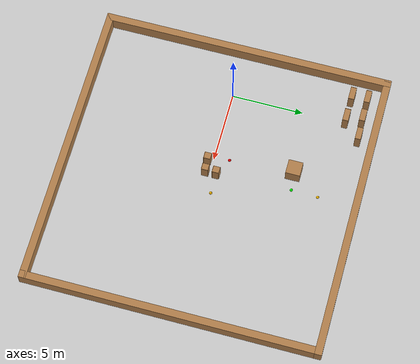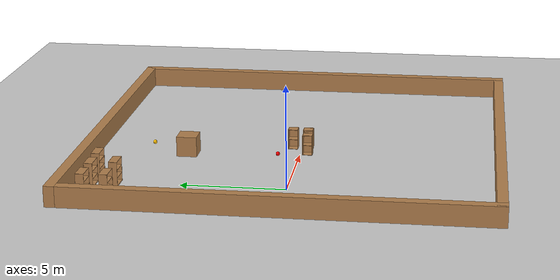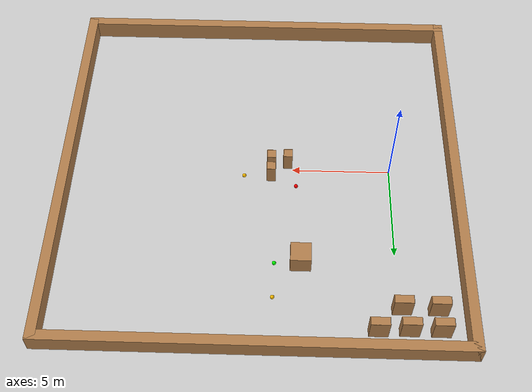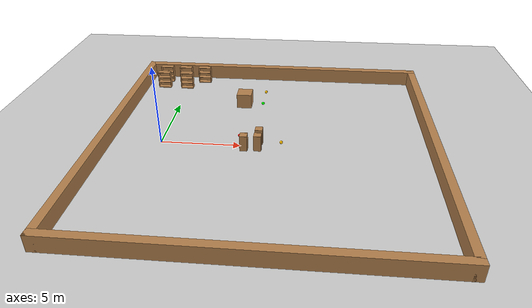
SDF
<sdf version="1.7">
 <world name="default">
  <model name="ground_plane">
   <pose>0 0 0 0 -0 0.716815</pose>
   <static>1</static>
   <link name="link">
    <collision name="collision">
     <geometry><plane><normal>0 0 1</normal><size>100 100</size></plane></geometry>
     <surface><friction><ode><mu>100</mu><mu2>50</mu2></ode></friction></surface>
    </collision>
    <visual name="visual">
     <cast_shadows>0</cast_shadows>
     <geometry><plane><normal>0 0 1</normal><size>100 100</size></plane></geometry>
     <material>
      <script><uri>file://media/materials/scripts/gazebo.material</uri><name>Gazebo/Grey</name></script>
     </material>
    </visual>
   </link>
  </model>
  <model name="boundary20x20">
   <pose>6.68965 0.18325 0 0 -0 0</pose>
   <link name="Wall_0">
    <collision name="Wall_0_Collision">
     <geometry><box><size>20.5 0.5 1</size></box></geometry>
     <pose>0 0 0.5 0 -0 0</pose>
    </collision>
    <visual name="Wall_0_Visual">
     <pose>0 0 0.5 0 -0 0</pose>
     <geometry><box><size>20.5 0.5 1</size></box></geometry>
     <material>
      <script><uri>file://media/materials/scripts/gazebo.material</uri><name>Gazebo/Wood</name></script>
      <ambient>1 1 1 1</ambient>
     </material>
     <meta><layer>0</layer></meta>
    </visual>
    <pose>0 -10 0 0 -0 0</pose>
   </link>
   <link name="Wall_2">
    <collision name="Wall_2_Collision">
     <geometry><box><size>20.5 0.5 1</size></box></geometry>
     <pose>0 0 0.5 0 -0 0</pose>
    </collision>
    <visual name="Wall_2_Visual">
     <pose>0 0 0.5 0 -0 0</pose>
     <geometry><box><size>20.5 0.5 1</size></box></geometry>
     <material>
      <script><uri>file://media/materials/scripts/gazebo.material</uri><name>Gazebo/Wood</name></script>
      <ambient>1 1 1 1</ambient>
     </material>
     <meta><layer>0</layer></meta>
    </visual>
    <pose>-10 0 0 0 -0 -1.5708</pose>
   </link>
   <link name="Wall_4">
    <collision name="Wall_4_Collision">
     <geometry><box><size>20.5 0.5 1</size></box></geometry>
     <pose>0 0 0.5 0 -0 0</pose>
    </collision>
    <visual name="Wall_4_Visual">
     <pose>0 0 0.5 0 -0 0</pose>
     <geometry><box><size>20.5 0.5 1</size></box></geometry>
     <material>
      <script><uri>file://media/materials/scripts/gazebo.material</uri><name>Gazebo/Wood</name></script>
      <ambient>1 1 1 1</ambient>
     </material>
     <meta><layer>0</layer></meta>
    </visual>
    <pose>0 10 0 0 -0 0</pose>
   </link>
   <link name="Wall_8">
    <collision name="Wall_8_Collision">
     <geometry><box><size>20.5 0.5 1</size></box></geometry>
     <pose>0 0 0.5 0 -0 0</pose>
    </collision>
    <visual name="Wall_8_Visual">
     <pose>0 0 0.5 0 -0 0</pose>
     <geometry><box><size>20.5 0.5 1</size></box></geometry>
     <material>
      <script><uri>file://media/materials/scripts/gazebo.material</uri><name>Gazebo/Wood</name></script>
      <ambient>1 1 1 1</ambient>
     </material>
     <meta><layer>0</layer></meta>
    </visual>
    <pose>10 0 0 0 -0 1.5708</pose>
   </link>
   <static>1</static>
  </model>
  <model name="sphere_yo">
   <link name="link_1">
    <pose>0 0 0.1 0 -0 0</pose>
    <inertial>
     <mass>1</mass>
     <inertia><ixx>0.1</ixx><ixy>0</ixy><ixz>0</ixz><iyy>0.1</iyy><iyz>0</iyz><izz>0.1</izz></inertia>
    </inertial>
    <visual name="visual">
     <geometry><sphere><radius>0.1</radius></sphere></geometry>
     <material>
      <lighting>1</lighting>
      <script><uri>file://media/materials/scripts/gazebo.material</uri><name>Gazebo/Grey</name></script>
      <ambient>1 0.749 0 1</ambient>
      <diffuse>1 0.749 0 1</diffuse>
      <specular>0 0 0 1</specular>
      <emissive>0 0 0 1</emissive>
      <shader type="vertex"><normal_map>__default__</normal_map></shader>
     </material>
    </visual>
    <collision name="collision">
     <geometry><sphere><radius>0.1</radius></sphere></geometry>
     <surface>
      <friction>
       <ode><mu>1</mu><mu2>1</mu2><fdir1>0 0 0</fdir1><slip1>0</slip1><slip2>0</slip2></ode>
       <torsional>
        <coefficient>1</coefficient>
        <patch_radius>0</patch_radius>
        <surface_radius>0</surface_radius>
        <use_patch_radius>1</use_patch_radius>
        <ode><slip>0</slip></ode>
       </torsional>
      </friction>
      <bounce><restitution_coefficient>0</restitution_coefficient><threshold>1e+06</threshold></bounce>
      <contact>
       <collide_without_contact>0</collide_without_contact>
       <collide_without_contact_bitmask>1</collide_without_contact_bitmask>
       <collide_bitmask>1</collide_bitmask>
       <ode>
        <soft_cfm>0</soft_cfm>
        <soft_erp>0.2</soft_erp>
        <kp>1e+13</kp>
        <kd>1</kd>
        <max_vel>0.01</max_vel>
        <min_depth>0</min_depth>
       </ode>
       <bullet>
        <split_impulse>1</split_impulse>
        <split_impulse_penetration_threshold>-0.01</split_impulse_penetration_threshold>
        <soft_cfm>0</soft_cfm>
        <soft_erp>0.2</soft_erp>
        <kp>1e+13</kp>
        <kd>1</kd>
       </bullet>
      </contact>
     </surface>
    </collision>
   </link>
   <static>1</static>
   <pose>7.49354 0.467227 0 0 -0 0</pose>
  </model>
  <model name="sphere_g">
   <link name="link_1">
    <pose>0 0 0.1 0 -0 0</pose>
    <inertial>
     <mass>1</mass>
     <inertia><ixx>0.1</ixx><ixy>0</ixy><ixz>0</ixz><iyy>0.1</iyy><iyz>0</iyz><izz>0.1</izz></inertia>
    </inertial>
    <visual name="visual">
     <geometry><sphere><radius>0.1</radius></sphere></geometry>
     <material>
      <lighting>1</lighting>
      <script><uri>file://media/materials/scripts/gazebo.material</uri><name>Gazebo/Grey</name></script>
      <ambient>0 1 0 1</ambient>
      <diffuse>0 1 0 1</diffuse>
      <specular>0 0 0 1</specular>
      <emissive>0 0 0 1</emissive>
      <shader type="vertex"><normal_map>__default__</normal_map></shader>
     </material>
    </visual>
    <collision name="collision">
     <geometry><sphere><radius>0.1</radius></sphere></geometry>
     <surface>
      <friction>
       <ode><mu>1</mu><mu2>1</mu2><fdir1>0 0 0</fdir1><slip1>0</slip1><slip2>0</slip2></ode>
       <torsional>
        <coefficient>1</coefficient>
        <patch_radius>0</patch_radius>
        <surface_radius>0</surface_radius>
        <use_patch_radius>1</use_patch_radius>
        <ode><slip>0</slip></ode>
       </torsional>
      </friction>
      <bounce><restitution_coefficient>0</restitution_coefficient><threshold>1e+06</threshold></bounce>
      <contact>
       <collide_without_contact>0</collide_without_contact>
       <collide_without_contact_bitmask>1</collide_without_contact_bitmask>
       <collide_bitmask>1</collide_bitmask>
       <ode>
        <soft_cfm>0</soft_cfm>
        <soft_erp>0.2</soft_erp>
        <kp>1e+13</kp>
        <kd>1</kd>
        <max_vel>0.01</max_vel>
        <min_depth>0</min_depth>
       </ode>
       <bullet>
        <split_impulse>1</split_impulse>
        <split_impulse_penetration_threshold>-0.01</split_impulse_penetration_threshold>
        <soft_cfm>0</soft_cfm>
        <soft_erp>0.2</soft_erp>
        <kp>1e+13</kp>
        <kd>1</kd>
       </bullet>
      </contact>
     </surface>
    </collision>
   </link>
   <static>1</static>
   <pose>5.85173 5.66826 0 0 -0 0</pose>
  </model>
  <model name="sphere_r">
   <link name="link_1">
    <pose>0 0 0.1 0 -0 0</pose>
    <inertial>
     <mass>1</mass>
     <inertia><ixx>0.1</ixx><ixy>0</ixy><ixz>0</ixz><iyy>0.1</iyy><iyz>0</iyz><izz>0.1</izz></inertia>
    </inertial>
    <visual name="visual">
     <geometry><sphere><radius>0.1</radius></sphere></geometry>
     <material>
      <lighting>1</lighting>
      <script><uri>file://media/materials/scripts/gazebo.material</uri><name>Gazebo/Grey</name></script>
      <ambient>1 0 0 1</ambient>
      <diffuse>1 0 0 1</diffuse>
      <specular>0 0 0 1</specular>
      <emissive>0 0 0 1</emissive>
      <shader type="vertex"><normal_map>__default__</normal_map></shader>
     </material>
    </visual>
    <collision name="collision">
     <geometry><sphere><radius>0.1</radius></sphere></geometry>
     <surface>
      <friction>
       <ode><mu>1</mu><mu2>1</mu2><fdir1>0 0 0</fdir1><slip1>0</slip1><slip2>0</slip2></ode>
       <torsional>
        <coefficient>1</coefficient>
        <patch_radius>0</patch_radius>
        <surface_radius>0</surface_radius>
        <use_patch_radius>1</use_patch_radius>
        <ode><slip>0</slip></ode>
       </torsional>
      </friction>
      <bounce><restitution_coefficient>0</restitution_coefficient><threshold>1e+06</threshold></bounce>
      <contact>
       <collide_without_contact>0</collide_without_contact>
       <collide_without_contact_bitmask>1</collide_without_contact_bitmask>
       <collide_bitmask>1</collide_bitmask>
       <ode>
        <soft_cfm>0</soft_cfm>
        <soft_erp>0.2</soft_erp>
        <kp>1e+13</kp>
        <kd>1</kd>
        <max_vel>0.01</max_vel>
        <min_depth>0</min_depth>
       </ode>
       <bullet>
        <split_impulse>1</split_impulse>
        <split_impulse_penetration_threshold>-0.01</split_impulse_penetration_threshold>
        <soft_cfm>0</soft_cfm>
        <soft_erp>0.2</soft_erp>
        <kp>1e+13</kp>
        <kd>1</kd>
       </bullet>
      </contact>
     </surface>
    </collision>
   </link>
   <static>1</static>
   <pose>4.81508 1.07756 0 0 -0 0</pose>
  </model>
  <model name="sphere_yo_0">
   <link name="link_1">
    <pose>0 0 0.1 0 -0 0</pose>
    <inertial>
     <mass>1</mass>
     <inertia><ixx>0.1</ixx><ixy>0</ixy><ixz>0</ixz><iyy>0.1</iyy><iyz>0</iyz><izz>0.1</izz></inertia>
    </inertial>
    <visual name="visual">
     <geometry><sphere><radius>0.1</radius></sphere></geometry>
     <material>
      <lighting>1</lighting>
      <script><uri>file://media/materials/scripts/gazebo.material</uri><name>Gazebo/Grey</name></script>
      <ambient>1 0.749 0 1</ambient>
      <diffuse>1 0.749 0 1</diffuse>
      <specular>0 0 0 1</specular>
      <emissive>0 0 0 1</emissive>
      <shader type="vertex"><normal_map>__default__</normal_map></shader>
     </material>
    </visual>
    <collision name="collision">
     <geometry><sphere><radius>0.1</radius></sphere></geometry>
     <surface>
      <friction>
       <ode><mu>1</mu><mu2>1</mu2><fdir1>0 0 0</fdir1><slip1>0</slip1><slip2>0</slip2></ode>
       <torsional>
        <coefficient>1</coefficient>
        <patch_radius>0</patch_radius>
        <surface_radius>0</surface_radius>
        <use_patch_radius>1</use_patch_radius>
        <ode><slip>0</slip></ode>
       </torsional>
      </friction>
      <bounce><restitution_coefficient>0</restitution_coefficient><threshold>1e+06</threshold></bounce>
      <contact>
       <collide_without_contact>0</collide_without_contact>
       <collide_without_contact_bitmask>1</collide_without_contact_bitmask>
       <collide_bitmask>1</collide_bitmask>
       <ode>
        <soft_cfm>0</soft_cfm>
        <soft_erp>0.2</soft_erp>
        <kp>1e+13</kp>
        <kd>1</kd>
        <max_vel>0.01</max_vel>
        <min_depth>0</min_depth>
       </ode>
       <bullet>
        <split_impulse>1</split_impulse>
        <split_impulse_penetration_threshold>-0.01</split_impulse_penetration_threshold>
        <soft_cfm>0</soft_cfm>
        <soft_erp>0.2</soft_erp>
        <kp>1e+13</kp>
        <kd>1</kd>
       </bullet>
      </contact>
     </surface>
    </collision>
   </link>
   <static>1</static>
   <pose>5.89963 7.5182 0 0 -0 0</pose>
  </model>
  <model name="obs1x1_1">
   <pose>4.97042 5.93474 0 0 -0 0</pose>
   <link name="Wall_0">
    <collision name="Wall_0_Collision">
     <geometry><box><size>1.01 1 1</size></box></geometry>
     <pose>0 0 0.5 0 -0 0</pose>
    </collision>
    <visual name="Wall_0_Visual">
     <pose>0 0 0.5 0 -0 0</pose>
     <geometry><box><size>1.01 1 1</size></box></geometry>
     <material>
      <script><uri>file://media/materials/scripts/gazebo.material</uri><name>Gazebo/Wood</name></script>
      <ambient>1 1 1 1</ambient>
     </material>
     <meta><layer>0</layer></meta>
    </visual>
    <pose>-0.39 -0.41 0 0 -0 0</pose>
   </link>
   <static>1</static>
  </model>
  <model name="bookshelf_3">
   <static>1</static>
   <link name="link">
    <inertial><mass>1</mass></inertial>
    <collision name="back">
     <pose>0 0.005 0.6 0 -0 0</pose>
     <geometry><box><size>0.9 0.01 1.2</size></box></geometry>
    </collision>
    <visual name="visual1">
     <pose>0 0.005 0.6 0 -0 0</pose>
     <geometry><box><size>0.9 0.01 1.2</size></box></geometry>
     <material>
      <script><uri>file://media/materials/scripts/gazebo.material</uri><name>Gazebo/Wood</name></script>
     </material>
    </visual>
    <collision name="left_side">
     <pose>0.45 -0.195 0.6 0 -0 0</pose>
     <geometry><box><size>0.02 0.4 1.2</size></box></geometry>
    </collision>
    <visual name="visual2">
     <pose>0.45 -0.195 0.6 0 -0 0</pose>
     <geometry><box><size>0.02 0.4 1.2</size></box></geometry>
     <material>
      <script><uri>file://media/materials/scripts/gazebo.material</uri><name>Gazebo/Wood</name></script>
     </material>
    </visual>
    <collision name="right_side">
     <pose>-0.45 -0.195 0.6 0 -0 0</pose>
     <geometry><box><size>0.02 0.4 1.2</size></box></geometry>
    </collision>
    <visual name="visual3">
     <pose>-0.45 -0.195 0.6 0 -0 0</pose>
     <geometry><box><size>0.02 0.4 1.2</size></box></geometry>
     <material>
      <script><uri>file://media/materials/scripts/gazebo.material</uri><name>Gazebo/Wood</name></script>
     </material>
    </visual>
    <collision name="bottom">
     <pose>0 -0.195 0.03 0 -0 0</pose>
     <geometry><box><size>0.88 0.4 0.06</size></box></geometry>
    </collision>
    <visual name="visual4">
     <pose>0 -0.195 0.03 0 -0 0</pose>
     <geometry><box><size>0.88 0.4 0.06</size></box></geometry>
     <material>
      <script><uri>file://media/materials/scripts/gazebo.material</uri><name>Gazebo/Wood</name></script>
     </material>
    </visual>
    <collision name="top">
     <pose>0 -0.195 1.19 0 -0 0</pose>
     <geometry><box><size>0.88 0.4 0.02</size></box></geometry>
    </collision>
    <visual name="visual5">
     <pose>0 -0.195 1.19 0 -0 0</pose>
     <geometry><box><size>0.88 0.4 0.02</size></box></geometry>
     <material>
      <script><uri>file://media/materials/scripts/gazebo.material</uri><name>Gazebo/Wood</name></script>
     </material>
    </visual>
    <collision name="low_shelf">
     <pose>0 -0.195 0.43 0 -0 0</pose>
     <geometry><box><size>0.88 0.4 0.02</size></box></geometry>
    </collision>
    <visual name="visual6">
     <pose>0 -0.195 0.43 0 -0 0</pose>
     <geometry><box><size>0.88 0.4 0.02</size></box></geometry>
     <material>
      <script><uri>file://media/materials/scripts/gazebo.material</uri><name>Gazebo/Wood</name></script>
     </material>
    </visual>
    <collision name="high_shelf">
     <pose>0 -0.195 0.8 0 -0 0</pose>
     <geometry><box><size>0.88 0.4 0.02</size></box></geometry>
    </collision>
    <visual name="visual7">
     <pose>0 -0.195 0.8 0 -0 0</pose>
     <geometry><box><size>0.88 0.4 0.02</size></box></geometry>
     <material>
      <script><uri>file://media/materials/scripts/gazebo.material</uri><name>Gazebo/Wood</name></script>
     </material>
    </visual>
   </link>
   <pose>-1.87586 9.30908 0 0 -0 0</pose>
  </model>
  <model name="bookshelf_4">
   <static>1</static>
   <link name="link">
    <inertial><mass>1</mass></inertial>
    <collision name="back">
     <pose>0 0.005 0.6 0 -0 0</pose>
     <geometry><box><size>0.9 0.01 1.2</size></box></geometry>
    </collision>
    <visual name="visual1">
     <pose>0 0.005 0.6 0 -0 0</pose>
     <geometry><box><size>0.9 0.01 1.2</size></box></geometry>
     <material>
      <script><uri>file://media/materials/scripts/gazebo.material</uri><name>Gazebo/Wood</name></script>
     </material>
    </visual>
    <collision name="left_side">
     <pose>0.45 -0.195 0.6 0 -0 0</pose>
     <geometry><box><size>0.02 0.4 1.2</size></box></geometry>
    </collision>
    <visual name="visual2">
     <pose>0.45 -0.195 0.6 0 -0 0</pose>
     <geometry><box><size>0.02 0.4 1.2</size></box></geometry>
     <material>
      <script><uri>file://media/materials/scripts/gazebo.material</uri><name>Gazebo/Wood</name></script>
     </material>
    </visual>
    <collision name="right_side">
     <pose>-0.45 -0.195 0.6 0 -0 0</pose>
     <geometry><box><size>0.02 0.4 1.2</size></box></geometry>
    </collision>
    <visual name="visual3">
     <pose>-0.45 -0.195 0.6 0 -0 0</pose>
     <geometry><box><size>0.02 0.4 1.2</size></box></geometry>
     <material>
      <script><uri>file://media/materials/scripts/gazebo.material</uri><name>Gazebo/Wood</name></script>
     </material>
    </visual>
    <collision name="bottom">
     <pose>0 -0.195 0.03 0 -0 0</pose>
     <geometry><box><size>0.88 0.4 0.06</size></box></geometry>
    </collision>
    <visual name="visual4">
     <pose>0 -0.195 0.03 0 -0 0</pose>
     <geometry><box><size>0.88 0.4 0.06</size></box></geometry>
     <material>
      <script><uri>file://media/materials/scripts/gazebo.material</uri><name>Gazebo/Wood</name></script>
     </material>
    </visual>
    <collision name="top">
     <pose>0 -0.195 1.19 0 -0 0</pose>
     <geometry><box><size>0.88 0.4 0.02</size></box></geometry>
    </collision>
    <visual name="visual5">
     <pose>0 -0.195 1.19 0 -0 0</pose>
     <geometry><box><size>0.88 0.4 0.02</size></box></geometry>
     <material>
      <script><uri>file://media/materials/scripts/gazebo.material</uri><name>Gazebo/Wood</name></script>
     </material>
    </visual>
    <collision name="low_shelf">
     <pose>0 -0.195 0.43 0 -0 0</pose>
     <geometry><box><size>0.88 0.4 0.02</size></box></geometry>
    </collision>
    <visual name="visual6">
     <pose>0 -0.195 0.43 0 -0 0</pose>
     <geometry><box><size>0.88 0.4 0.02</size></box></geometry>
     <material>
      <script><uri>file://media/materials/scripts/gazebo.material</uri><name>Gazebo/Wood</name></script>
     </material>
    </visual>
    <collision name="high_shelf">
     <pose>0 -0.195 0.8 0 -0 0</pose>
     <geometry><box><size>0.88 0.4 0.02</size></box></geometry>
    </collision>
    <visual name="visual7">
     <pose>0 -0.195 0.8 0 -0 0</pose>
     <geometry><box><size>0.88 0.4 0.02</size></box></geometry>
     <material>
      <script><uri>file://media/materials/scripts/gazebo.material</uri><name>Gazebo/Wood</name></script>
     </material>
    </visual>
   </link>
   <pose>-0.422179 9.31068 0 0 -0 0</pose>
  </model>
  <model name="bookshelf_5">
   <static>1</static>
   <link name="link">
    <inertial><mass>1</mass></inertial>
    <collision name="back">
     <pose>0 0.005 0.6 0 -0 0</pose>
     <geometry><box><size>0.9 0.01 1.2</size></box></geometry>
    </collision>
    <visual name="visual1">
     <pose>0 0.005 0.6 0 -0 0</pose>
     <geometry><box><size>0.9 0.01 1.2</size></box></geometry>
     <material>
      <script><uri>file://media/materials/scripts/gazebo.material</uri><name>Gazebo/Wood</name></script>
     </material>
    </visual>
    <collision name="left_side">
     <pose>0.45 -0.195 0.6 0 -0 0</pose>
     <geometry><box><size>0.02 0.4 1.2</size></box></geometry>
    </collision>
    <visual name="visual2">
     <pose>0.45 -0.195 0.6 0 -0 0</pose>
     <geometry><box><size>0.02 0.4 1.2</size></box></geometry>
     <material>
      <script><uri>file://media/materials/scripts/gazebo.material</uri><name>Gazebo/Wood</name></script>
     </material>
    </visual>
    <collision name="right_side">
     <pose>-0.45 -0.195 0.6 0 -0 0</pose>
     <geometry><box><size>0.02 0.4 1.2</size></box></geometry>
    </collision>
    <visual name="visual3">
     <pose>-0.45 -0.195 0.6 0 -0 0</pose>
     <geometry><box><size>0.02 0.4 1.2</size></box></geometry>
     <material>
      <script><uri>file://media/materials/scripts/gazebo.material</uri><name>Gazebo/Wood</name></script>
     </material>
    </visual>
    <collision name="bottom">
     <pose>0 -0.195 0.03 0 -0 0</pose>
     <geometry><box><size>0.88 0.4 0.06</size></box></geometry>
    </collision>
    <visual name="visual4">
     <pose>0 -0.195 0.03 0 -0 0</pose>
     <geometry><box><size>0.88 0.4 0.06</size></box></geometry>
     <material>
      <script><uri>file://media/materials/scripts/gazebo.material</uri><name>Gazebo/Wood</name></script>
     </material>
    </visual>
    <collision name="top">
     <pose>0 -0.195 1.19 0 -0 0</pose>
     <geometry><box><size>0.88 0.4 0.02</size></box></geometry>
    </collision>
    <visual name="visual5">
     <pose>0 -0.195 1.19 0 -0 0</pose>
     <geometry><box><size>0.88 0.4 0.02</size></box></geometry>
     <material>
      <script><uri>file://media/materials/scripts/gazebo.material</uri><name>Gazebo/Wood</name></script>
     </material>
    </visual>
    <collision name="low_shelf">
     <pose>0 -0.195 0.43 0 -0 0</pose>
     <geometry><box><size>0.88 0.4 0.02</size></box></geometry>
    </collision>
    <visual name="visual6">
     <pose>0 -0.195 0.43 0 -0 0</pose>
     <geometry><box><size>0.88 0.4 0.02</size></box></geometry>
     <material>
      <script><uri>file://media/materials/scripts/gazebo.material</uri><name>Gazebo/Wood</name></script>
     </material>
    </visual>
    <collision name="high_shelf">
     <pose>0 -0.195 0.8 0 -0 0</pose>
     <geometry><box><size>0.88 0.4 0.02</size></box></geometry>
    </collision>
    <visual name="visual7">
     <pose>0 -0.195 0.8 0 -0 0</pose>
     <geometry><box><size>0.88 0.4 0.02</size></box></geometry>
     <material>
      <script><uri>file://media/materials/scripts/gazebo.material</uri><name>Gazebo/Wood</name></script>
     </material>
    </visual>
   </link>
   <pose>1.0092 9.35946 0 0 -0 0</pose>
  </model>
  <model name="bookshelf_6">
   <static>1</static>
   <link name="link">
    <inertial><mass>1</mass></inertial>
    <collision name="back">
     <pose>0 0.005 0.6 0 -0 0</pose>
     <geometry><box><size>0.9 0.01 1.2</size></box></geometry>
    </collision>
    <visual name="visual1">
     <pose>0 0.005 0.6 0 -0 0</pose>
     <geometry><box><size>0.9 0.01 1.2</size></box></geometry>
     <material>
      <script><uri>file://media/materials/scripts/gazebo.material</uri><name>Gazebo/Wood</name></script>
     </material>
    </visual>
    <collision name="left_side">
     <pose>0.45 -0.195 0.6 0 -0 0</pose>
     <geometry><box><size>0.02 0.4 1.2</size></box></geometry>
    </collision>
    <visual name="visual2">
     <pose>0.45 -0.195 0.6 0 -0 0</pose>
     <geometry><box><size>0.02 0.4 1.2</size></box></geometry>
     <material>
      <script><uri>file://media/materials/scripts/gazebo.material</uri><name>Gazebo/Wood</name></script>
     </material>
    </visual>
    <collision name="right_side">
     <pose>-0.45 -0.195 0.6 0 -0 0</pose>
     <geometry><box><size>0.02 0.4 1.2</size></box></geometry>
    </collision>
    <visual name="visual3">
     <pose>-0.45 -0.195 0.6 0 -0 0</pose>
     <geometry><box><size>0.02 0.4 1.2</size></box></geometry>
     <material>
      <script><uri>file://media/materials/scripts/gazebo.material</uri><name>Gazebo/Wood</name></script>
     </material>
    </visual>
    <collision name="bottom">
     <pose>0 -0.195 0.03 0 -0 0</pose>
     <geometry><box><size>0.88 0.4 0.06</size></box></geometry>
    </collision>
    <visual name="visual4">
     <pose>0 -0.195 0.03 0 -0 0</pose>
     <geometry><box><size>0.88 0.4 0.06</size></box></geometry>
     <material>
      <script><uri>file://media/materials/scripts/gazebo.material</uri><name>Gazebo/Wood</name></script>
     </material>
    </visual>
    <collision name="top">
     <pose>0 -0.195 1.19 0 -0 0</pose>
     <geometry><box><size>0.88 0.4 0.02</size></box></geometry>
    </collision>
    <visual name="visual5">
     <pose>0 -0.195 1.19 0 -0 0</pose>
     <geometry><box><size>0.88 0.4 0.02</size></box></geometry>
     <material>
      <script><uri>file://media/materials/scripts/gazebo.material</uri><name>Gazebo/Wood</name></script>
     </material>
    </visual>
    <collision name="low_shelf">
     <pose>0 -0.195 0.43 0 -0 0</pose>
     <geometry><box><size>0.88 0.4 0.02</size></box></geometry>
    </collision>
    <visual name="visual6">
     <pose>0 -0.195 0.43 0 -0 0</pose>
     <geometry><box><size>0.88 0.4 0.02</size></box></geometry>
     <material>
      <script><uri>file://media/materials/scripts/gazebo.material</uri><name>Gazebo/Wood</name></script>
     </material>
    </visual>
    <collision name="high_shelf">
     <pose>0 -0.195 0.8 0 -0 0</pose>
     <geometry><box><size>0.88 0.4 0.02</size></box></geometry>
    </collision>
    <visual name="visual7">
     <pose>0 -0.195 0.8 0 -0 0</pose>
     <geometry><box><size>0.88 0.4 0.02</size></box></geometry>
     <material>
      <script><uri>file://media/materials/scripts/gazebo.material</uri><name>Gazebo/Wood</name></script>
     </material>
    </visual>
   </link>
   <pose>-1.83915 8.22684 0 0 -0 0</pose>
  </model>
  <model name="bookshelf_7">
   <static>1</static>
   <link name="link">
    <inertial><mass>1</mass></inertial>
    <collision name="back">
     <pose>0 0.005 0.6 0 -0 0</pose>
     <geometry><box><size>0.9 0.01 1.2</size></box></geometry>
    </collision>
    <visual name="visual1">
     <pose>0 0.005 0.6 0 -0 0</pose>
     <geometry><box><size>0.9 0.01 1.2</size></box></geometry>
     <material>
      <script><uri>file://media/materials/scripts/gazebo.material</uri><name>Gazebo/Wood</name></script>
     </material>
    </visual>
    <collision name="left_side">
     <pose>0.45 -0.195 0.6 0 -0 0</pose>
     <geometry><box><size>0.02 0.4 1.2</size></box></geometry>
    </collision>
    <visual name="visual2">
     <pose>0.45 -0.195 0.6 0 -0 0</pose>
     <geometry><box><size>0.02 0.4 1.2</size></box></geometry>
     <material>
      <script><uri>file://media/materials/scripts/gazebo.material</uri><name>Gazebo/Wood</name></script>
     </material>
    </visual>
    <collision name="right_side">
     <pose>-0.45 -0.195 0.6 0 -0 0</pose>
     <geometry><box><size>0.02 0.4 1.2</size></box></geometry>
    </collision>
    <visual name="visual3">
     <pose>-0.45 -0.195 0.6 0 -0 0</pose>
     <geometry><box><size>0.02 0.4 1.2</size></box></geometry>
     <material>
      <script><uri>file://media/materials/scripts/gazebo.material</uri><name>Gazebo/Wood</name></script>
     </material>
    </visual>
    <collision name="bottom">
     <pose>0 -0.195 0.03 0 -0 0</pose>
     <geometry><box><size>0.88 0.4 0.06</size></box></geometry>
    </collision>
    <visual name="visual4">
     <pose>0 -0.195 0.03 0 -0 0</pose>
     <geometry><box><size>0.88 0.4 0.06</size></box></geometry>
     <material>
      <script><uri>file://media/materials/scripts/gazebo.material</uri><name>Gazebo/Wood</name></script>
     </material>
    </visual>
    <collision name="top">
     <pose>0 -0.195 1.19 0 -0 0</pose>
     <geometry><box><size>0.88 0.4 0.02</size></box></geometry>
    </collision>
    <visual name="visual5">
     <pose>0 -0.195 1.19 0 -0 0</pose>
     <geometry><box><size>0.88 0.4 0.02</size></box></geometry>
     <material>
      <script><uri>file://media/materials/scripts/gazebo.material</uri><name>Gazebo/Wood</name></script>
     </material>
    </visual>
    <collision name="low_shelf">
     <pose>0 -0.195 0.43 0 -0 0</pose>
     <geometry><box><size>0.88 0.4 0.02</size></box></geometry>
    </collision>
    <visual name="visual6">
     <pose>0 -0.195 0.43 0 -0 0</pose>
     <geometry><box><size>0.88 0.4 0.02</size></box></geometry>
     <material>
      <script><uri>file://media/materials/scripts/gazebo.material</uri><name>Gazebo/Wood</name></script>
     </material>
    </visual>
    <collision name="high_shelf">
     <pose>0 -0.195 0.8 0 -0 0</pose>
     <geometry><box><size>0.88 0.4 0.02</size></box></geometry>
    </collision>
    <visual name="visual7">
     <pose>0 -0.195 0.8 0 -0 0</pose>
     <geometry><box><size>0.88 0.4 0.02</size></box></geometry>
     <material>
      <script><uri>file://media/materials/scripts/gazebo.material</uri><name>Gazebo/Wood</name></script>
     </material>
    </visual>
   </link>
   <pose>-0.136966 8.21821 0 0 -0 0</pose>
  </model>
  <model name="cabinet_1">
   <static>1</static>
   <link name="cabinet_bottom_plate">
    <inertial>
     <pose>0 0 -1 0 -0 0</pose>
     <inertia><ixx>2.05</ixx><ixy>0</ixy><ixz>0</ixz><iyy>2.05</iyy><iyz>0</iyz><izz>2.05</izz></inertia>
     <mass>25</mass>
    </inertial>
    <collision name="cabinet_bottom_plate_geom">
     <pose>0 0 0.01 0 -0 0</pose>
     <geometry><box><size>0.45 0.45 0.02</size></box></geometry>
    </collision>
    <visual name="cabinet_bottom_plate_geom_visual">
     <pose>0 0 0.01 0 -0 0</pose>
     <geometry><box><size>0.45 0.45 0.02</size></box></geometry>
     <material>
      <script><uri>file://media/materials/scripts/gazebo.material</uri><name>Gazebo/Wood</name></script>
     </material>
    </visual>
    <collision name="cabinet_bottom_plate_geom_cabinet_back_plate">
     <pose>0.235 0 0.51 0 -0 0</pose>
     <geometry><box><size>0.02 0.45 1.02</size></box></geometry>
    </collision>
    <visual name="cabinet_bottom_plate_geom_cabinet_back_plate_visual">
     <pose>0.235 0 0.51 0 -0 0</pose>
     <geometry><box><size>0.02 0.45 1.02</size></box></geometry>
     <material>
      <script><uri>file://media/materials/scripts/gazebo.material</uri><name>Gazebo/Wood</name></script>
     </material>
    </visual>
    <collision name="cabinet_bottom_plate_geom_cabinet_left_plate">
     <pose>0 0.235 0.51 0 -0 0</pose>
     <geometry><box><size>0.45 0.02 1.02</size></box></geometry>
    </collision>
    <visual name="cabinet_bottom_plate_geom_cabinet_left_plate_visual">
     <pose>0 0.235 0.51 0 -0 0</pose>
     <geometry><box><size>0.45 0.02 1.02</size></box></geometry>
     <material>
      <script><uri>file://media/materials/scripts/gazebo.material</uri><name>Gazebo/Wood</name></script>
     </material>
    </visual>
    <collision name="cabinet_bottom_plate_geom_cabinet_middle_plate">
     <pose>0 0 0.51 0 -0 0</pose>
     <geometry><box><size>0.45 0.45 0.02</size></box></geometry>
    </collision>
    <visual name="cabinet_bottom_plate_geom_cabinet_middle_plate_visual">
     <pose>0 0 0.51 0 -0 0</pose>
     <geometry><box><size>0.45 0.45 0.02</size></box></geometry>
     <material>
      <script><uri>file://media/materials/scripts/gazebo.material</uri><name>Gazebo/Wood</name></script>
     </material>
    </visual>
    <collision name="cabinet_bottom_plate_geom_cabinet_right_plate">
     <pose>0 -0.235 0.51 0 -0 0</pose>
     <geometry><box><size>0.45 0.02 1.02</size></box></geometry>
    </collision>
    <visual name="cabinet_bottom_plate_geom_cabinet_right_plate_visual">
     <pose>0 -0.235 0.51 0 -0 0</pose>
     <geometry><box><size>0.45 0.02 1.02</size></box></geometry>
     <material>
      <script><uri>file://media/materials/scripts/gazebo.material</uri><name>Gazebo/Wood</name></script>
     </material>
    </visual>
    <collision name="cabinet_bottom_plate_geom_cabinet_top_plate">
     <pose>0 0 1.01 0 -0 0</pose>
     <geometry><box><size>0.45 0.45 0.02</size></box></geometry>
    </collision>
    <visual name="cabinet_bottom_plate_geom_cabinet_top_plate_visual">
     <pose>0 0 1.01 0 -0 0</pose>
     <geometry><box><size>0.45 0.45 0.02</size></box></geometry>
     <material>
      <script><uri>file://media/materials/scripts/gazebo.material</uri><name>Gazebo/Wood</name></script>
     </material>
    </visual>
   </link>
   <pose>6.09502 -0.294304 0 0 -0 0</pose>
  </model>
  <model name="cabinet_2">
   <static>1</static>
   <link name="cabinet_bottom_plate">
    <inertial>
     <pose>0 0 -1 0 -0 0</pose>
     <inertia><ixx>2.05</ixx><ixy>0</ixy><ixz>0</ixz><iyy>2.05</iyy><iyz>0</iyz><izz>2.05</izz></inertia>
     <mass>25</mass>
    </inertial>
    <collision name="cabinet_bottom_plate_geom">
     <pose>0 0 0.01 0 -0 0</pose>
     <geometry><box><size>0.45 0.45 0.02</size></box></geometry>
    </collision>
    <visual name="cabinet_bottom_plate_geom_visual">
     <pose>0 0 0.01 0 -0 0</pose>
     <geometry><box><size>0.45 0.45 0.02</size></box></geometry>
     <material>
      <script><uri>file://media/materials/scripts/gazebo.material</uri><name>Gazebo/Wood</name></script>
     </material>
    </visual>
    <collision name="cabinet_bottom_plate_geom_cabinet_back_plate">
     <pose>0.235 0 0.51 0 -0 0</pose>
     <geometry><box><size>0.02 0.45 1.02</size></box></geometry>
    </collision>
    <visual name="cabinet_bottom_plate_geom_cabinet_back_plate_visual">
     <pose>0.235 0 0.51 0 -0 0</pose>
     <geometry><box><size>0.02 0.45 1.02</size></box></geometry>
     <material>
      <script><uri>file://media/materials/scripts/gazebo.material</uri><name>Gazebo/Wood</name></script>
     </material>
    </visual>
    <collision name="cabinet_bottom_plate_geom_cabinet_left_plate">
     <pose>0 0.235 0.51 0 -0 0</pose>
     <geometry><box><size>0.45 0.02 1.02</size></box></geometry>
    </collision>
    <visual name="cabinet_bottom_plate_geom_cabinet_left_plate_visual">
     <pose>0 0.235 0.51 0 -0 0</pose>
     <geometry><box><size>0.45 0.02 1.02</size></box></geometry>
     <material>
      <script><uri>file://media/materials/scripts/gazebo.material</uri><name>Gazebo/Wood</name></script>
     </material>
    </visual>
    <collision name="cabinet_bottom_plate_geom_cabinet_middle_plate">
     <pose>0 0 0.51 0 -0 0</pose>
     <geometry><box><size>0.45 0.45 0.02</size></box></geometry>
    </collision>
    <visual name="cabinet_bottom_plate_geom_cabinet_middle_plate_visual">
     <pose>0 0 0.51 0 -0 0</pose>
     <geometry><box><size>0.45 0.45 0.02</size></box></geometry>
     <material>
      <script><uri>file://media/materials/scripts/gazebo.material</uri><name>Gazebo/Wood</name></script>
     </material>
    </visual>
    <collision name="cabinet_bottom_plate_geom_cabinet_right_plate">
     <pose>0 -0.235 0.51 0 -0 0</pose>
     <geometry><box><size>0.45 0.02 1.02</size></box></geometry>
    </collision>
    <visual name="cabinet_bottom_plate_geom_cabinet_right_plate_visual">
     <pose>0 -0.235 0.51 0 -0 0</pose>
     <geometry><box><size>0.45 0.02 1.02</size></box></geometry>
     <material>
      <script><uri>file://media/materials/scripts/gazebo.material</uri><name>Gazebo/Wood</name></script>
     </material>
    </visual>
    <collision name="cabinet_bottom_plate_geom_cabinet_top_plate">
     <pose>0 0 1.01 0 -0 0</pose>
     <geometry><box><size>0.45 0.45 0.02</size></box></geometry>
    </collision>
    <visual name="cabinet_bottom_plate_geom_cabinet_top_plate_visual">
     <pose>0 0 1.01 0 -0 0</pose>
     <geometry><box><size>0.45 0.45 0.02</size></box></geometry>
     <material>
      <script><uri>file://media/materials/scripts/gazebo.material</uri><name>Gazebo/Wood</name></script>
     </material>
    </visual>
   </link>
   <pose>6.10387 0.465314 0 0 -0 0</pose>
  </model>
  <model name="cabinet_3">
   <static>1</static>
   <link name="cabinet_bottom_plate">
    <inertial>
     <pose>0 0 -1 0 -0 0</pose>
     <inertia><ixx>2.05</ixx><ixy>0</ixy><ixz>0</ixz><iyy>2.05</iyy><iyz>0</iyz><izz>2.05</izz></inertia>
     <mass>25</mass>
    </inertial>
    <collision name="cabinet_bottom_plate_geom">
     <pose>0 0 0.01 0 -0 0</pose>
     <geometry><box><size>0.45 0.45 0.02</size></box></geometry>
    </collision>
    <visual name="cabinet_bottom_plate_geom_visual">
     <pose>0 0 0.01 0 -0 0</pose>
     <geometry><box><size>0.45 0.45 0.02</size></box></geometry>
     <material>
      <script><uri>file://media/materials/scripts/gazebo.material</uri><name>Gazebo/Wood</name></script>
     </material>
    </visual>
    <collision name="cabinet_bottom_plate_geom_cabinet_back_plate">
     <pose>0.235 0 0.51 0 -0 0</pose>
     <geometry><box><size>0.02 0.45 1.02</size></box></geometry>
    </collision>
    <visual name="cabinet_bottom_plate_geom_cabinet_back_plate_visual">
     <pose>0.235 0 0.51 0 -0 0</pose>
     <geometry><box><size>0.02 0.45 1.02</size></box></geometry>
     <material>
      <script><uri>file://media/materials/scripts/gazebo.material</uri><name>Gazebo/Wood</name></script>
     </material>
    </visual>
    <collision name="cabinet_bottom_plate_geom_cabinet_left_plate">
     <pose>0 0.235 0.51 0 -0 0</pose>
     <geometry><box><size>0.45 0.02 1.02</size></box></geometry>
    </collision>
    <visual name="cabinet_bottom_plate_geom_cabinet_left_plate_visual">
     <pose>0 0.235 0.51 0 -0 0</pose>
     <geometry><box><size>0.45 0.02 1.02</size></box></geometry>
     <material>
      <script><uri>file://media/materials/scripts/gazebo.material</uri><name>Gazebo/Wood</name></script>
     </material>
    </visual>
    <collision name="cabinet_bottom_plate_geom_cabinet_middle_plate">
     <pose>0 0 0.51 0 -0 0</pose>
     <geometry><box><size>0.45 0.45 0.02</size></box></geometry>
    </collision>
    <visual name="cabinet_bottom_plate_geom_cabinet_middle_plate_visual">
     <pose>0 0 0.51 0 -0 0</pose>
     <geometry><box><size>0.45 0.45 0.02</size></box></geometry>
     <material>
      <script><uri>file://media/materials/scripts/gazebo.material</uri><name>Gazebo/Wood</name></script>
     </material>
    </visual>
    <collision name="cabinet_bottom_plate_geom_cabinet_right_plate">
     <pose>0 -0.235 0.51 0 -0 0</pose>
     <geometry><box><size>0.45 0.02 1.02</size></box></geometry>
    </collision>
    <visual name="cabinet_bottom_plate_geom_cabinet_right_plate_visual">
     <pose>0 -0.235 0.51 0 -0 0</pose>
     <geometry><box><size>0.45 0.02 1.02</size></box></geometry>
     <material>
      <script><uri>file://media/materials/scripts/gazebo.material</uri><name>Gazebo/Wood</name></script>
     </material>
    </visual>
    <collision name="cabinet_bottom_plate_geom_cabinet_top_plate">
     <pose>0 0 1.01 0 -0 0</pose>
     <geometry><box><size>0.45 0.45 0.02</size></box></geometry>
    </collision>
    <visual name="cabinet_bottom_plate_geom_cabinet_top_plate_visual">
     <pose>0 0 1.01 0 -0 0</pose>
     <geometry><box><size>0.45 0.45 0.02</size></box></geometry>
     <material>
      <script><uri>file://media/materials/scripts/gazebo.material</uri><name>Gazebo/Wood</name></script>
     </material>
    </visual>
   </link>
   <pose>5.25211 -0.360325 0 0 -0 0</pose>
  </model>
 </world>
</sdf>
